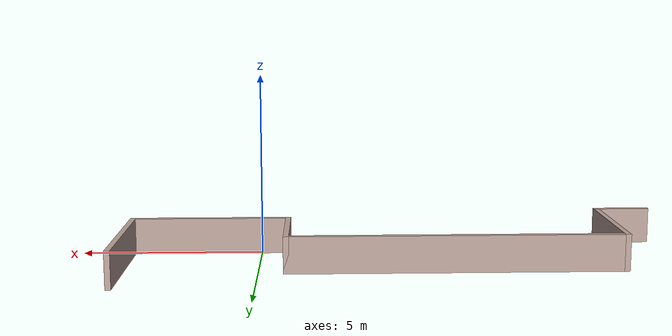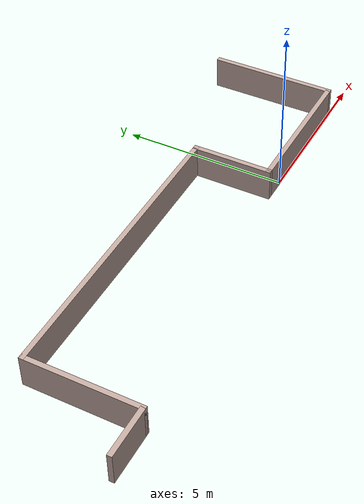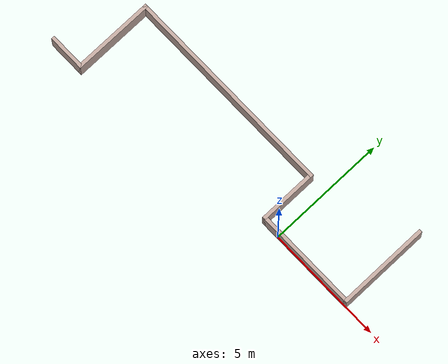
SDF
<?xml version='1.0'?>
<sdf version='1.7'>
  <model name='inner_walls'>
    <pose>-3.782 1.418 0 0 -0 0</pose>
    <link name='Wall_0'>
      <collision name='Wall_0_Collision'>
        <geometry>
          <box>
            <size>1.6 0.15 1</size>
          </box>
        </geometry>
        <pose>0 0 0.5 0 -0 0</pose>
      </collision>
      <visual name='Wall_0_Visual'>
        <pose>0 0 0.5 0 -0 0</pose>
        <geometry>
          <box>
            <size>1.6 0.15 1</size>
          </box>
        </geometry>
        <material>
          <script>
            <uri>file://media/materials/scripts/gazebo.material</uri>
            <name>Gazebo/Grey</name>
          </script>
          <ambient>0.760784 0.662745 0.627451 1</ambient>
        </material>
        <meta>
          <layer>0</layer>
        </meta>
      </visual>
      <pose>-6.675 -2.382 0 0 -0 0</pose>
    </link>
    <link name='Wall_1'>
      <collision name='Wall_1_Collision'>
        <geometry>
          <box>
            <size>3.5 0.15 1</size>
          </box>
        </geometry>
        <pose>0 0 0.5 0 -0 0</pose>
      </collision>
      <visual name='Wall_1_Visual'>
        <pose>0 0 0.5 0 -0 0</pose>
        <geometry>
          <box>
            <size>3.5 0.15 1</size>
          </box>
        </geometry>
        <material>
          <script>
            <uri>file://media/materials/scripts/gazebo.material</uri>
            <name>Gazebo/Grey</name>
          </script>
          <ambient>0.760784 0.662745 0.627451 1</ambient>
        </material>
        <meta>
          <layer>0</layer>
        </meta>
      </visual>
      <pose>-5.95 -0.707 0 0 -0 1.5708</pose>
    </link>
    <link name='Wall_2'>
      <collision name='Wall_2_Collision'>
        <geometry>
          <box>
            <size>9.14978 0.15 1</size>
          </box>
        </geometry>
        <pose>0 0 0.5 0 -0 0</pose>
      </collision>
      <visual name='Wall_2_Visual'>
        <pose>0 0 0.5 0 -0 0</pose>
        <geometry>
          <box>
            <size>9.14978 0.15 1</size>
          </box>
        </geometry>
        <material>
          <script>
            <uri>file://media/materials/scripts/gazebo.material</uri>
            <name>Gazebo/Grey</name>
          </script>
          <ambient>0.760784 0.662745 0.627451 1</ambient>
        </material>
        <meta>
          <layer>0</layer>
        </meta>
      </visual>
      <pose>-1.45 0.968 0 0 -0 0</pose>
    </link>
    <link name='Wall_3'>
      <collision name='Wall_3_Collision'>
        <geometry>
          <box>
            <size>2.5 0.15 1</size>
          </box>
        </geometry>
        <pose>0 0 0.5 0 -0 0</pose>
      </collision>
      <visual name='Wall_3_Visual'>
        <pose>0 0 0.5 0 -0 0</pose>
        <geometry>
          <box>
            <size>2.5 0.15 1</size>
          </box>
        </geometry>
        <material>
          <script>
            <uri>file://media/materials/scripts/gazebo.material</uri>
            <name>Gazebo/Grey</name>
          </script>
          <ambient>0.760784 0.662745 0.627451 1</ambient>
        </material>
        <meta>
          <layer>0</layer>
        </meta>
      </visual>
      <pose>3.05 -0.207 0 0 -0 -1.5708</pose>
    </link>
    <link name='Wall_4'>
      <collision name='Wall_4_Collision'>
        <geometry>
          <box>
            <size>4.5 0.15 1</size>
          </box>
        </geometry>
        <pose>0 0 0.5 0 -0 0</pose>
      </collision>
      <visual name='Wall_4_Visual'>
        <pose>0 0 0.5 0 -0 0</pose>
        <geometry>
          <box>
            <size>4.5 0.15 1</size>
          </box>
        </geometry>
        <material>
          <script>
            <uri>file://media/materials/scripts/gazebo.material</uri>
            <name>Gazebo/Grey</name>
          </script>
          <ambient>0.760784 0.662745 0.627451 1</ambient>
        </material>
        <meta>
          <layer>0</layer>
        </meta>
      </visual>
      <pose>5.225 -1.382 0 0 -0 0</pose>
    </link>
    <link name='Wall_5'>
      <collision name='Wall_5_Collision'>
        <geometry>
          <box>
            <size>3.914 0.15 1</size>
          </box>
        </geometry>
        <pose>0 0 0.5 0 -0 0</pose>
      </collision>
      <visual name='Wall_5_Visual'>
        <pose>0 0 0.5 0 -0 0</pose>
        <geometry>
          <box>
            <size>3.914 0.15 1</size>
          </box>
        </geometry>
        <material>
          <script>
            <uri>file://media/materials/scripts/gazebo.material</uri>
            <name>Gazebo/Grey</name>
          </script>
          <ambient>0.760784 0.662745 0.627451 1</ambient>
        </material>
        <meta>
          <layer>0</layer>
        </meta>
      </visual>
      <pose>7.4 0.5 0 0 -0 1.5708</pose>
    </link>
    <static>1</static>
  </model>
</sdf>
